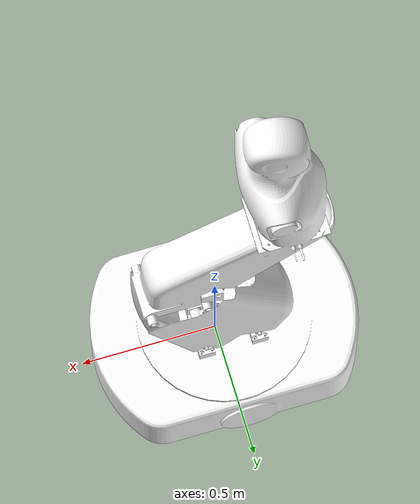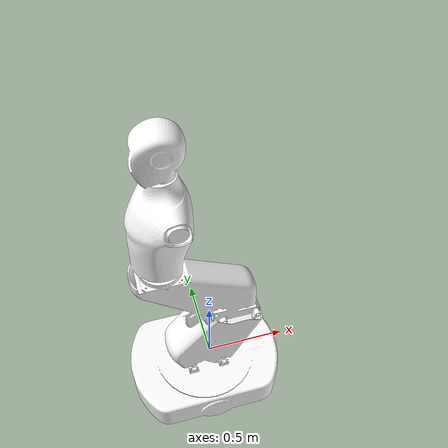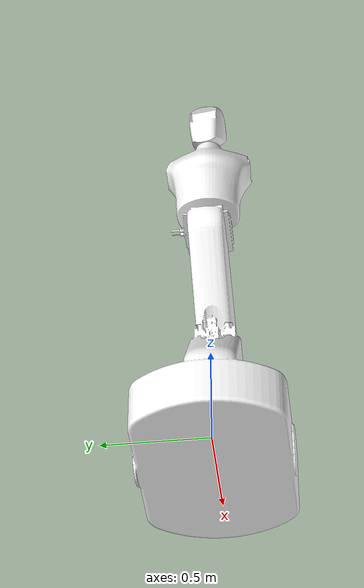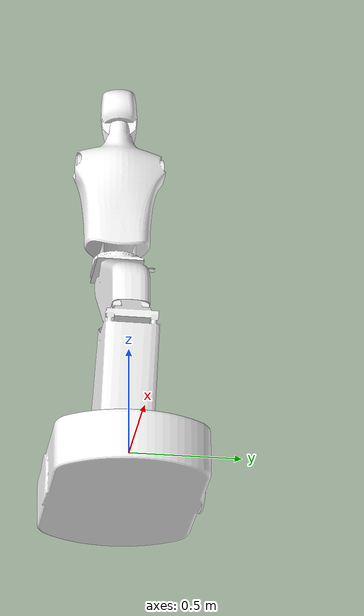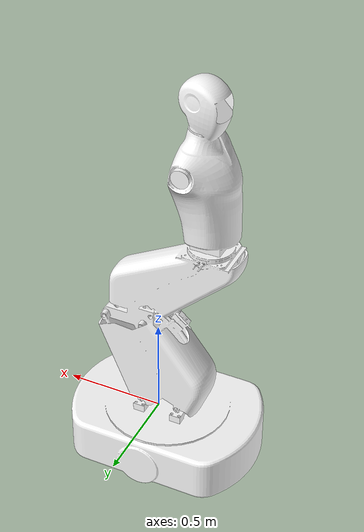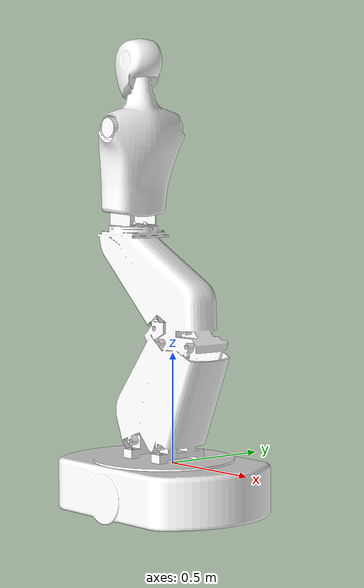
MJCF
<mujoco model="body">
  <compiler angle="radian" meshdir="assets/"/>

  <asset>
    <mesh name="body_base_link" file="body_base_link.STL"/>
  </asset>

  <worldbody>
    <body name="body_base_link">
      <inertial pos="0 0 0" quat="0.497168 0.496905 0.502961 0.502932" mass="205.04" diaginertia="15.5412 11.503 7.00271"/>
      <geom type="mesh" contype="0" conaffinity="0" group="1" density="0" rgba="1 1 1 1" mesh="body_base_link"/>
      <geom type="mesh" rgba="1 1 1 1" mesh="body_base_link"/>
    </body>
  </worldbody>
</mujoco>
